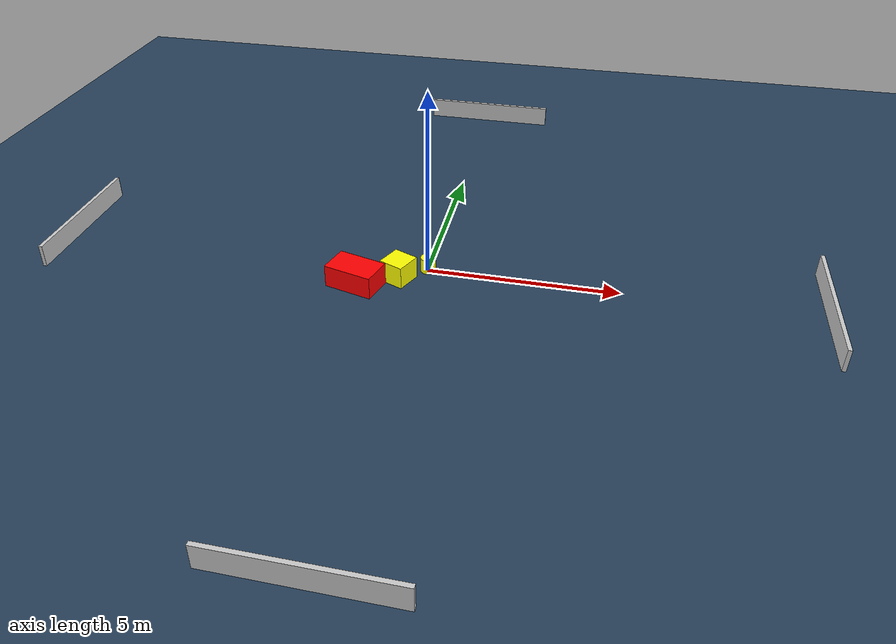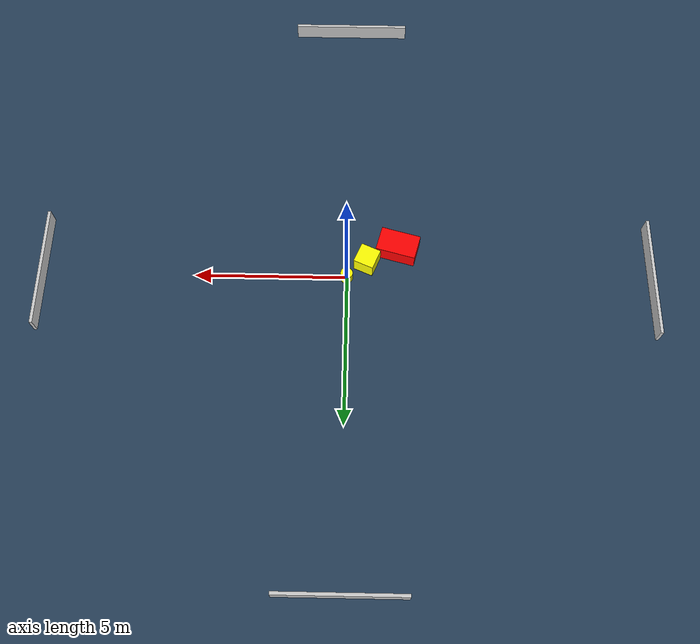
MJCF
<?xml version="1.0" ?>
<mujoco model="generated_environment">
  <option timestep="0.01" integrator="RK4" cone="elliptic"/>
  <default>
    <geom density="1"/>
  </default>
  <asset>
    <texture builtin="gradient" height="3072" name="skybox" rgb1="0.3 0.5 0.7" rgb2="0 0 0" type="skybox" width="512"/>
    <texture builtin="checker" height="300" name="groundplane" rgb1="0.2 0.3 0.4" rgb2="0.1 0.2 0.3" type="2d" width="300"/>
    <material name="groundplane" reflectance="0.2" texrepeat="5 5" texture="groundplane"/>
  </asset>
  <worldbody>
    <light dir="0 0 -1" directional="true" pos="0 0 1.5"/>
    <geom condim="3" friction="0.5 0.005 0.001" material="groundplane" name="floor" pos="0 0 0" size="0 0 0.05" type="plane"/>
    <body name="walls">
      <geom name="wall_1" condim="4" pos="-10.0 0.0 0.3" rgba="0.800000011920929 0.800000011920929 0.800000011920929 1.0" size="0.05 2.0 0.3" type="box"/>
      <geom name="wall_2" condim="4" pos="10.0 0.0 0.3" rgba="0.800000011920929 0.800000011920929 0.800000011920929 1.0" size="0.05 2.0 0.3" type="box"/>
      <geom name="wall_3" condim="4" pos="0.0 -10.0 0.3" rgba="0.800000011920929 0.800000011920929 0.800000011920929 1.0" size="2.0 0.05 0.3" type="box"/>
      <geom name="wall_4" condim="4" pos="0.0 10.0 0.3" rgba="0.800000011920929 0.800000011920929 0.800000011920929 1.0" size="2.0 0.05 0.3" type="box"/>
    </body>
    <body name="robot">
      <joint name="joint_x" type="slide" pos="0 0 0" axis="1 0 0"/>
      <joint name="joint_y" type="slide" pos="0 0 0" axis="0 1 0"/>
      <geom name="robot" type="cylinder" pos="0.0 0.0 0.2" size="0.2 0.2 0.0" mass="5.0" friction="1.0 0.005 0.0001" condim="4" rgba="1.0 1.0 0.0 1.0"/>
    </body>
    <body name="obstacle_1_movable">
      <geom name="obstacle_1_movable" condim="4" pos="-0.6657592723793271 -0.54264322068753 0.3" euler="0 0 246.52796941426197" friction="0.0 0.005 0.001" rgba="1.0 1.0 0.0 1.0" size="0.3409379513075606 0.33344917550307196 0.3" type="box" mass="0.1"/>
      <joint type="free"/>
    </body>
    <body name="obstacle_2_static">
      <geom name="obstacle_2_static" condim="4" pos="-1.6844335612861914 -1.0435002439281833 0.3" euler="0 0 344.94565837844385" friction="0.0 0.005 0.001" rgba="1.0 0.0 0.0 1.0" size="0.6561444477722336 0.40702411075231426 0.3" type="box"/>
    </body>
  </worldbody>
  <actuator>
    <motor name="actuator_x" joint="joint_x" gear="1" ctrlrange="-1 1"/>
    <motor name="actuator_y" joint="joint_y" gear="1" ctrlrange="-1 1"/>
  </actuator>
</mujoco>
